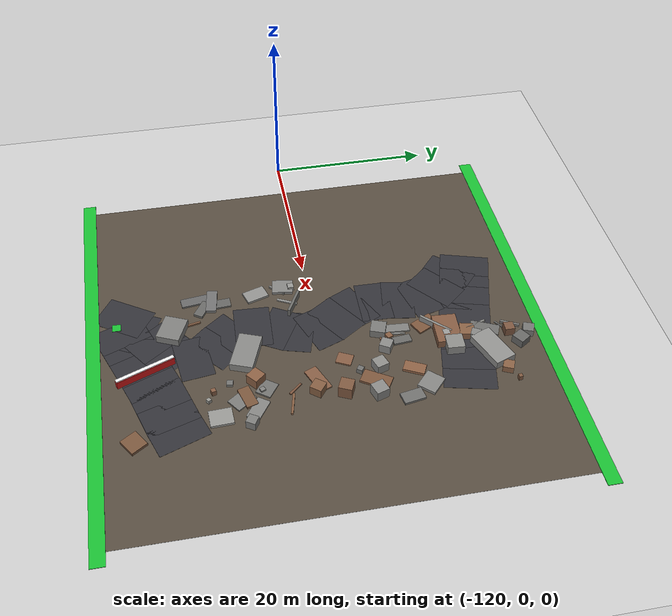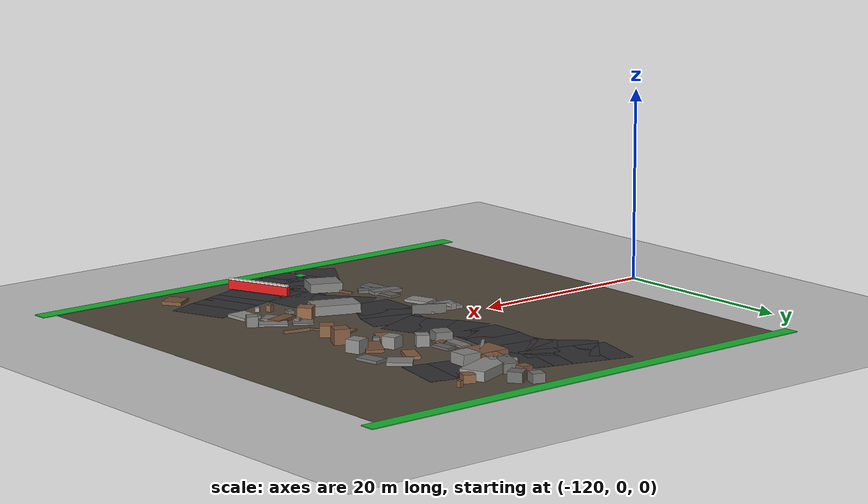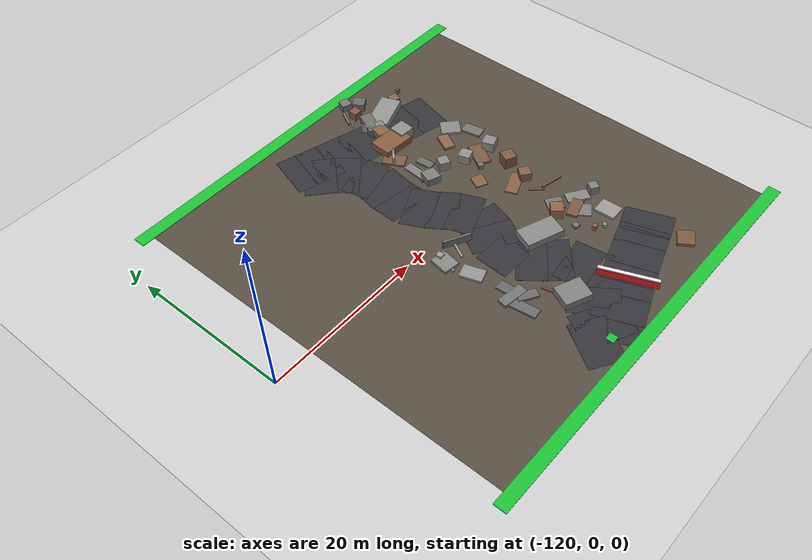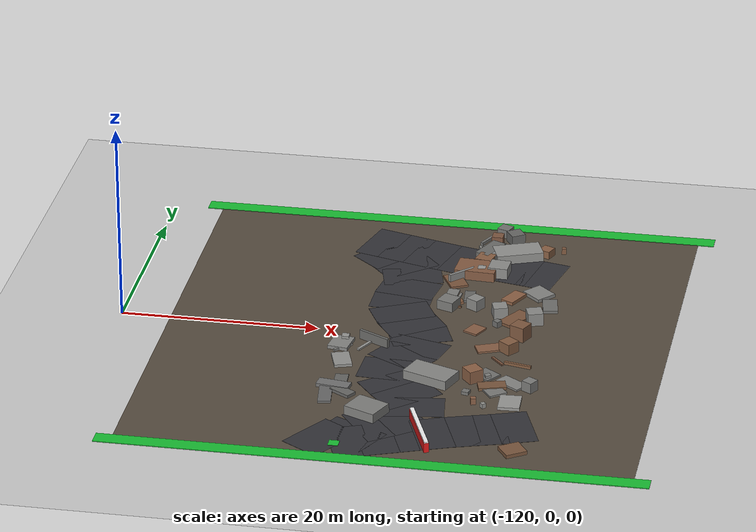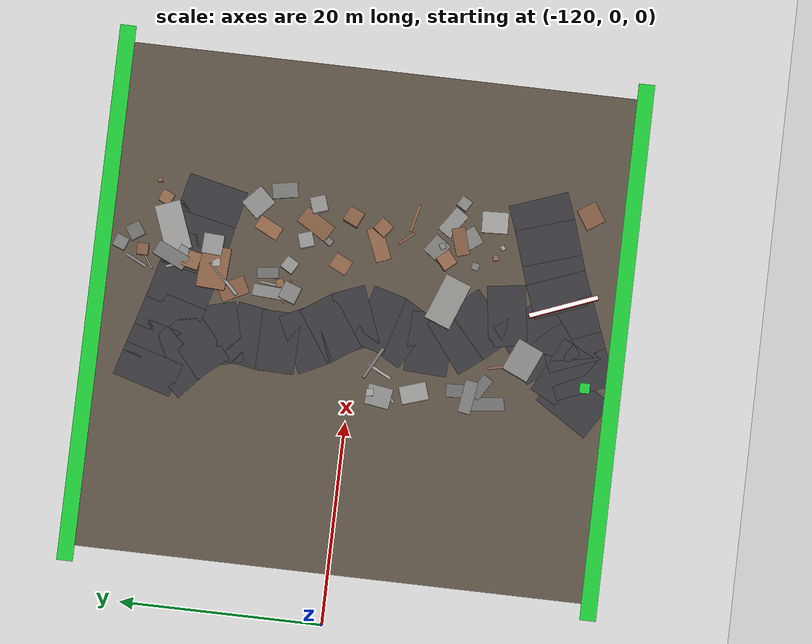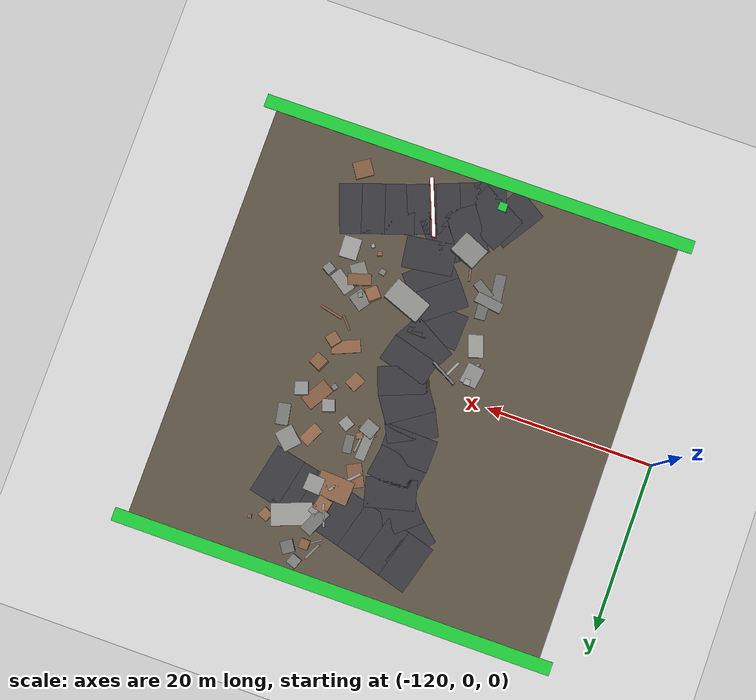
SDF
<sdf version="1.6">
 <world name="navitas_arena">
  <model name="ground_plane">
   <static>true</static>
   <link name="link">
    <collision name="collision">
     <geometry><plane><normal>0 0 1</normal><size>400 400</size></plane></geometry>
     <surface><friction><ode><mu>0.8</mu><mu2>0.8</mu2></ode></friction></surface>
    </collision>
    <visual name="visual">
     <cast_shadows>false</cast_shadows>
     <geometry><plane><normal>0 0 1</normal><size>400 400</size></plane></geometry>
     <material>
      <script><uri>file://media/materials/scripts/gazebo.material</uri><name>Gazebo/Grey</name></script>
     </material>
    </visual>
   </link>
  </model>
  <model name="gd_kolay">
   <static>true</static>
   <pose>-90.000 0.000 0.010 0 0 0.000</pose>
   <link name="link">
    <collision name="col"><geometry><box><size>50.000 50.000 0.020</size></box></geometry></collision>
    <visual name="vis">
     <geometry><box><size>50.000 50.000 0.020</size></box></geometry>
     <material><ambient>0.34 0.30 0.25 1</ambient><diffuse>0.34 0.30 0.25 1</diffuse></material>
    </visual>
   </link>
  </model>
  <model name="brd_kolay_N">
   <static>true</static>
   <pose>-90.000 25.800 0.040 0 0 0.000</pose>
   <link name="link">
    <collision name="col"><geometry><box><size>53.200 1.600 0.080</size></box></geometry></collision>
    <visual name="vis">
     <geometry><box><size>53.200 1.600 0.080</size></box></geometry>
     <material><ambient>0.10 0.75 0.20 1</ambient><diffuse>0.10 0.75 0.20 1</diffuse></material>
    </visual>
   </link>
  </model>
  <model name="brd_kolay_S">
   <static>true</static>
   <pose>-90.000 -25.800 0.040 0 0 0.000</pose>
   <link name="link">
    <collision name="col"><geometry><box><size>53.200 1.600 0.080</size></box></geometry></collision>
    <visual name="vis">
     <geometry><box><size>53.200 1.600 0.080</size></box></geometry>
     <material><ambient>0.10 0.75 0.20 1</ambient><diffuse>0.10 0.75 0.20 1</diffuse></material>
    </visual>
   </link>
  </model>
  <model name="road_kolay_1_0">
   <static>true</static>
   <pose>-95.431 -22.070 0.040 0 0 2.572</pose>
   <link name="link">
    <collision name="col"><geometry><box><size>4.349 6.000 0.020</size></box></geometry></collision>
    <visual name="vis">
     <geometry><box><size>4.349 6.000 0.020</size></box></geometry>
     <material><ambient>0.20 0.20 0.22 1</ambient><diffuse>0.20 0.20 0.22 1</diffuse></material>
    </visual>
   </link>
  </model>
  <model name="road_kolay_2_0">
   <static>true</static>
   <pose>-93.084 -21.250 0.040 0 0 1.098</pose>
   <link name="link">
    <collision name="col"><geometry><box><size>4.831 6.000 0.020</size></box></geometry></collision>
    <visual name="vis">
     <geometry><box><size>4.831 6.000 0.020</size></box></geometry>
     <material><ambient>0.20 0.20 0.22 1</ambient><diffuse>0.20 0.20 0.22 1</diffuse></material>
    </visual>
   </link>
  </model>
  <model name="road_kolay_2_1">
   <static>true</static>
   <pose>-91.062 -18.696 0.040 0 0 0.620</pose>
   <link name="link">
    <collision name="col"><geometry><box><size>3.667 6.000 0.020</size></box></geometry></collision>
    <visual name="vis">
     <geometry><box><size>3.667 6.000 0.020</size></box></geometry>
     <material><ambient>0.20 0.20 0.22 1</ambient><diffuse>0.20 0.20 0.22 1</diffuse></material>
    </visual>
   </link>
  </model>
  <model name="road_kolay_2_2">
   <static>true</static>
   <pose>-88.757 -16.984 0.040 0 0 0.656</pose>
   <link name="link">
    <collision name="col"><geometry><box><size>3.876 6.000 0.020</size></box></geometry></collision>
    <visual name="vis">
     <geometry><box><size>3.876 6.000 0.020</size></box></geometry>
     <material><ambient>0.20 0.20 0.22 1</ambient><diffuse>0.20 0.20 0.22 1</diffuse></material>
    </visual>
   </link>
  </model>
  <model name="road_kolay_2_3">
   <static>true</static>
   <pose>-87.777 -14.629 0.040 0 0 1.707</pose>
   <link name="link">
    <collision name="col"><geometry><box><size>3.821 6.000 0.020</size></box></geometry></collision>
    <visual name="vis">
     <geometry><box><size>3.821 6.000 0.020</size></box></geometry>
     <material><ambient>0.20 0.20 0.22 1</ambient><diffuse>0.20 0.20 0.22 1</diffuse></material>
    </visual>
   </link>
  </model>
  <model name="road_kolay_2_4">
   <static>true</static>
   <pose>-88.890 -12.157 0.040 0 0 2.299</pose>
   <link name="link">
    <collision name="col"><geometry><box><size>3.648 6.000 0.020</size></box></geometry></collision>
    <visual name="vis">
     <geometry><box><size>3.648 6.000 0.020</size></box></geometry>
     <material><ambient>0.20 0.20 0.22 1</ambient><diffuse>0.20 0.20 0.22 1</diffuse></material>
    </visual>
   </link>
  </model>
  <model name="road_kolay_2_5">
   <static>true</static>
   <pose>-90.622 -10.077 0.040 0 0 2.230</pose>
   <link name="link">
    <collision name="col"><geometry><box><size>3.569 6.000 0.020</size></box></geometry></collision>
    <visual name="vis">
     <geometry><box><size>3.569 6.000 0.020</size></box></geometry>
     <material><ambient>0.20 0.20 0.22 1</ambient><diffuse>0.20 0.20 0.22 1</diffuse></material>
    </visual>
   </link>
  </model>
  <model name="road_kolay_2_6">
   <static>true</static>
   <pose>-91.360 -7.344 0.040 0 0 1.524</pose>
   <link name="link">
    <collision name="col"><geometry><box><size>4.259 6.000 0.020</size></box></geometry></collision>
    <visual name="vis">
     <geometry><box><size>4.259 6.000 0.020</size></box></geometry>
     <material><ambient>0.20 0.20 0.22 1</ambient><diffuse>0.20 0.20 0.22 1</diffuse></material>
    </visual>
   </link>
  </model>
  <model name="road_kolay_2_7">
   <static>true</static>
   <pose>-90.614 -4.500 0.040 0 0 1.052</pose>
   <link name="link">
    <collision name="col"><geometry><box><size>3.588 6.000 0.020</size></box></geometry></collision>
    <visual name="vis">
     <geometry><box><size>3.588 6.000 0.020</size></box></geometry>
     <material><ambient>0.20 0.20 0.22 1</ambient><diffuse>0.20 0.20 0.22 1</diffuse></material>
    </visual>
   </link>
  </model>
  <model name="road_kolay_2_8">
   <static>true</static>
   <pose>-89.621 -2.167 0.040 0 0 1.299</pose>
   <link name="link">
    <collision name="col"><geometry><box><size>3.323 6.000 0.020</size></box></geometry></collision>
    <visual name="vis">
     <geometry><box><size>3.323 6.000 0.020</size></box></geometry>
     <material><ambient>0.20 0.20 0.22 1</ambient><diffuse>0.20 0.20 0.22 1</diffuse></material>
    </visual>
   </link>
  </model>
  <model name="road_kolay_2_9">
   <static>true</static>
   <pose>-89.746 0.167 0.040 0 0 1.939</pose>
   <link name="link">
    <collision name="col"><geometry><box><size>3.401 6.000 0.020</size></box></geometry></collision>
    <visual name="vis">
     <geometry><box><size>3.401 6.000 0.020</size></box></geometry>
     <material><ambient>0.20 0.20 0.22 1</ambient><diffuse>0.20 0.20 0.22 1</diffuse></material>
    </visual>
   </link>
  </model>
  <model name="road_kolay_2_10">
   <static>true</static>
   <pose>-90.989 2.500 0.040 0 0 2.167</pose>
   <link name="link">
    <collision name="col"><geometry><box><size>3.720 6.000 0.020</size></box></geometry></collision>
    <visual name="vis">
     <geometry><box><size>3.720 6.000 0.020</size></box></geometry>
     <material><ambient>0.20 0.20 0.22 1</ambient><diffuse>0.20 0.20 0.22 1</diffuse></material>
    </visual>
   </link>
  </model>
  <model name="road_kolay_2_11">
   <static>true</static>
   <pose>-92.349 4.833 0.040 0 0 2.024</pose>
   <link name="link">
    <collision name="col"><geometry><box><size>3.495 6.000 0.020</size></box></geometry></collision>
    <visual name="vis">
     <geometry><box><size>3.495 6.000 0.020</size></box></geometry>
     <material><ambient>0.20 0.20 0.22 1</ambient><diffuse>0.20 0.20 0.22 1</diffuse></material>
    </visual>
   </link>
  </model>
  <model name="road_kolay_2_12">
   <static>true</static>
   <pose>-92.888 7.460 0.040 0 0 1.551</pose>
   <link name="link">
    <collision name="col"><geometry><box><size>3.821 6.000 0.020</size></box></geometry></collision>
    <visual name="vis">
     <geometry><box><size>3.821 6.000 0.020</size></box></geometry>
     <material><ambient>0.20 0.20 0.22 1</ambient><diffuse>0.20 0.20 0.22 1</diffuse></material>
    </visual>
   </link>
  </model>
  <model name="road_kolay_2_13">
   <static>true</static>
   <pose>-92.635 10.340 0.040 0 0 1.414</pose>
   <link name="link">
    <collision name="col"><geometry><box><size>3.775 6.000 0.020</size></box></geometry></collision>
    <visual name="vis">
     <geometry><box><size>3.775 6.000 0.020</size></box></geometry>
     <material><ambient>0.20 0.20 0.22 1</ambient><diffuse>0.20 0.20 0.22 1</diffuse></material>
    </visual>
   </link>
  </model>
  <model name="road_kolay_2_14">
   <static>true</static>
   <pose>-92.737 13.042 0.040 0 0 1.820</pose>
   <link name="link">
    <collision name="col"><geometry><box><size>3.546 6.000 0.020</size></box></geometry></collision>
    <visual name="vis">
     <geometry><box><size>3.546 6.000 0.020</size></box></geometry>
     <material><ambient>0.20 0.20 0.22 1</ambient><diffuse>0.20 0.20 0.22 1</diffuse></material>
    </visual>
   </link>
  </model>
  <model name="road_kolay_2_15">
   <static>true</static>
   <pose>-93.978 15.414 0.040 0 0 2.269</pose>
   <link name="link">
    <collision name="col"><geometry><box><size>3.744 6.000 0.020</size></box></geometry></collision>
    <visual name="vis">
     <geometry><box><size>3.744 6.000 0.020</size></box></geometry>
     <material><ambient>0.20 0.20 0.22 1</ambient><diffuse>0.20 0.20 0.22 1</diffuse></material>
    </visual>
   </link>
  </model>
  <model name="road_kolay_2_16">
   <static>true</static>
   <pose>-96.030 17.516 0.040 0 0 2.415</pose>
   <link name="link">
    <collision name="col"><geometry><box><size>3.945 6.000 0.020</size></box></geometry></collision>
    <visual name="vis">
     <geometry><box><size>3.945 6.000 0.020</size></box></geometry>
     <material><ambient>0.20 0.20 0.22 1</ambient><diffuse>0.20 0.20 0.22 1</diffuse></material>
    </visual>
   </link>
  </model>
  <model name="road_kolay_3_0">
   <static>true</static>
   <pose>-92.677 -22.494 0.040 0 0 0.371</pose>
   <link name="link">
    <collision name="col"><geometry><box><size>3.694 6.000 0.020</size></box></geometry></collision>
    <visual name="vis">
     <geometry><box><size>3.694 6.000 0.020</size></box></geometry>
     <material><ambient>0.20 0.20 0.22 1</ambient><diffuse>0.20 0.20 0.22 1</diffuse></material>
    </visual>
   </link>
  </model>
  <model name="road_kolay_3_1">
   <static>true</static>
   <pose>-90.156 -21.514 0.040 0 0 0.371</pose>
   <link name="link">
    <collision name="col"><geometry><box><size>3.516 6.000 0.020</size></box></geometry></collision>
    <visual name="vis">
     <geometry><box><size>3.516 6.000 0.020</size></box></geometry>
     <material><ambient>0.20 0.20 0.22 1</ambient><diffuse>0.20 0.20 0.22 1</diffuse></material>
    </visual>
   </link>
  </model>
  <model name="road_kolay_3_2">
   <static>true</static>
   <pose>-87.615 -20.524 0.040 0 0 0.372</pose>
   <link name="link">
    <collision name="col"><geometry><box><size>3.738 6.000 0.020</size></box></geometry></collision>
    <visual name="vis">
     <geometry><box><size>3.738 6.000 0.020</size></box></geometry>
     <material><ambient>0.20 0.20 0.22 1</ambient><diffuse>0.20 0.20 0.22 1</diffuse></material>
    </visual>
   </link>
  </model>
  <model name="road_kolay_3_3">
   <static>true</static>
   <pose>-85.096 -19.556 0.040 0 0 0.363</pose>
   <link name="link">
    <collision name="col"><geometry><box><size>3.459 6.000 0.020</size></box></geometry></collision>
    <visual name="vis">
     <geometry><box><size>3.459 6.000 0.020</size></box></geometry>
     <material><ambient>0.20 0.20 0.22 1</ambient><diffuse>0.20 0.20 0.22 1</diffuse></material>
    </visual>
   </link>
  </model>
  <model name="road_kolay_3_4">
   <static>true</static>
   <pose>-82.669 -18.702 0.040 0 0 0.314</pose>
   <link name="link">
    <collision name="col"><geometry><box><size>3.488 6.000 0.020</size></box></geometry></collision>
    <visual name="vis">
     <geometry><box><size>3.488 6.000 0.020</size></box></geometry>
     <material><ambient>0.20 0.20 0.22 1</ambient><diffuse>0.20 0.20 0.22 1</diffuse></material>
    </visual>
   </link>
  </model>
  <model name="road_kolay_3_5">
   <static>true</static>
   <pose>-80.135 -17.886 0.040 0 0 0.309</pose>
   <link name="link">
    <collision name="col"><geometry><box><size>3.637 6.000 0.020</size></box></geometry></collision>
    <visual name="vis">
     <geometry><box><size>3.637 6.000 0.020</size></box></geometry>
     <material><ambient>0.20 0.20 0.22 1</ambient><diffuse>0.20 0.20 0.22 1</diffuse></material>
    </visual>
   </link>
  </model>
  <model name="road_kolay_3_6">
   <static>true</static>
   <pose>-77.595 -17.017 0.040 0 0 0.350</pose>
   <link name="link">
    <collision name="col"><geometry><box><size>3.533 6.000 0.020</size></box></geometry></collision>
    <visual name="vis">
     <geometry><box><size>3.533 6.000 0.020</size></box></geometry>
     <material><ambient>0.20 0.20 0.22 1</ambient><diffuse>0.20 0.20 0.22 1</diffuse></material>
    </visual>
   </link>
  </model>
  <model name="road_kolay_3_21">
   <static>true</static>
   <pose>-79.750 15.464 0.040 0 0 2.918</pose>
   <link name="link">
    <collision name="col"><geometry><box><size>3.685 6.000 0.020</size></box></geometry></collision>
    <visual name="vis">
     <geometry><box><size>3.685 6.000 0.020</size></box></geometry>
     <material><ambient>0.20 0.20 0.22 1</ambient><diffuse>0.20 0.20 0.22 1</diffuse></material>
    </visual>
   </link>
  </model>
  <model name="road_kolay_3_22">
   <static>true</static>
   <pose>-82.488 16.066 0.040 0 0 2.932</pose>
   <link name="link">
    <collision name="col"><geometry><box><size>3.722 6.000 0.020</size></box></geometry></collision>
    <visual name="vis">
     <geometry><box><size>3.722 6.000 0.020</size></box></geometry>
     <material><ambient>0.20 0.20 0.22 1</ambient><diffuse>0.20 0.20 0.22 1</diffuse></material>
    </visual>
   </link>
  </model>
  <model name="road_kolay_3_23">
   <static>true</static>
   <pose>-85.172 16.646 0.040 0 0 2.926</pose>
   <link name="link">
    <collision name="col"><geometry><box><size>3.570 6.000 0.020</size></box></geometry></collision>
    <visual name="vis">
     <geometry><box><size>3.570 6.000 0.020</size></box></geometry>
     <material><ambient>0.20 0.20 0.22 1</ambient><diffuse>0.20 0.20 0.22 1</diffuse></material>
    </visual>
   </link>
  </model>
  <model name="road_kolay_3_24">
   <static>true</static>
   <pose>-88.324 17.419 0.040 0 0 2.884</pose>
   <link name="link">
    <collision name="col"><geometry><box><size>4.721 6.000 0.020</size></box></geometry></collision>
    <visual name="vis">
     <geometry><box><size>4.721 6.000 0.020</size></box></geometry>
     <material><ambient>0.20 0.20 0.22 1</ambient><diffuse>0.20 0.20 0.22 1</diffuse></material>
    </visual>
   </link>
  </model>
  <model name="road_kolay_3_25">
   <static>true</static>
   <pose>-91.609 18.320 0.040 0 0 2.862</pose>
   <link name="link">
    <collision name="col"><geometry><box><size>3.894 6.000 0.020</size></box></geometry></collision>
    <visual name="vis">
     <geometry><box><size>3.894 6.000 0.020</size></box></geometry>
     <material><ambient>0.20 0.20 0.22 1</ambient><diffuse>0.20 0.20 0.22 1</diffuse></material>
    </visual>
   </link>
  </model>
  <model name="road_kolay_3_26">
   <static>true</static>
   <pose>-94.418 19.133 0.040 0 0 2.858</pose>
   <link name="link">
    <collision name="col"><geometry><box><size>3.753 6.000 0.020</size></box></geometry></collision>
    <visual name="vis">
     <geometry><box><size>3.753 6.000 0.020</size></box></geometry>
     <material><ambient>0.20 0.20 0.22 1</ambient><diffuse>0.20 0.20 0.22 1</diffuse></material>
    </visual>
   </link>
  </model>
  <model name="road_kolay_3_27">
   <static>true</static>
   <pose>-96.994 19.885 0.040 0 0 2.856</pose>
   <link name="link">
    <collision name="col"><geometry><box><size>3.415 6.000 0.020</size></box></geometry></collision>
    <visual name="vis">
     <geometry><box><size>3.415 6.000 0.020</size></box></geometry>
     <material><ambient>0.20 0.20 0.22 1</ambient><diffuse>0.20 0.20 0.22 1</diffuse></material>
    </visual>
   </link>
  </model>
  <model name="bar_kolay_3">
   <static>true</static>
   <pose>-86.292 -20.009 0.500 0 0 1.943</pose>
   <link name="link">
    <collision name="col"><geometry><box><size>7.000 0.500 1.000</size></box></geometry></collision>
    <visual name="vis">
     <geometry><box><size>7.000 0.500 1.000</size></box></geometry>
     <material><ambient>0.85 0.10 0.10 1</ambient><diffuse>0.85 0.10 0.10 1</diffuse></material>
    </visual>
   </link>
  </model>
  <model name="bar_kolay_3b">
   <static>true</static>
   <pose>-86.292 -20.009 1.000 0 0 1.943</pose>
   <link name="link">
    <collision name="col"><geometry><box><size>7.000 0.400 0.300</size></box></geometry></collision>
    <visual name="vis">
     <geometry><box><size>7.000 0.400 0.300</size></box></geometry>
     <material><ambient>0.95 0.95 0.95 1</ambient><diffuse>0.95 0.95 0.95 1</diffuse></material>
    </visual>
   </link>
  </model>
  <model name="blk_kolay_3_1_0">
   <static>true</static>
   <pose>-84.111 14.920 0.588 0 0 3.082</pose>
   <link name="link">
    <collision name="col"><geometry><box><size>2.005 2.005 1.176</size></box></geometry></collision>
    <visual name="vis">
     <geometry><box><size>2.005 2.005 1.176</size></box></geometry>
     <material><ambient>0.55 0.55 0.54 1</ambient><diffuse>0.55 0.55 0.54 1</diffuse></material>
    </visual>
   </link>
  </model>
  <model name="blk_kolay_3_1_1">
   <static>true</static>
   <pose>-85.645 18.882 0.500 0 0 1.147</pose>
   <link name="link">
    <collision name="col"><geometry><box><size>3.354 1.493 1.000</size></box></geometry></collision>
    <visual name="vis">
     <geometry><box><size>3.354 1.493 1.000</size></box></geometry>
     <material><ambient>0.43 0.43 0.42 1</ambient><diffuse>0.43 0.43 0.42 1</diffuse></material>
    </visual>
   </link>
  </model>
  <model name="blk_kolay_3_1_2">
   <static>true</static>
   <pose>-85.834 16.841 0.500 0 0 1.347</pose>
   <link name="link">
    <collision name="col"><geometry><box><size>1.681 1.681 1.000</size></box></geometry></collision>
    <visual name="vis">
     <geometry><box><size>1.681 1.681 1.000</size></box></geometry>
     <material><ambient>0.54 0.38 0.27 1</ambient><diffuse>0.54 0.38 0.27 1</diffuse></material>
    </visual>
   </link>
  </model>
  <model name="blk_kolay_3_1_3">
   <static>true</static>
   <pose>-87.325 13.539 0.500 0 0 0.792</pose>
   <link name="link">
    <collision name="col"><geometry><box><size>4.159 0.312 1.000</size></box></geometry></collision>
    <visual name="vis">
     <geometry><box><size>4.159 0.312 1.000</size></box></geometry>
     <material><ambient>0.55 0.55 0.54 1</ambient><diffuse>0.55 0.55 0.54 1</diffuse></material>
    </visual>
   </link>
  </model>
  <model name="blk_kolay_3_1_4">
   <static>true</static>
   <pose>-86.329 17.955 0.500 0 0 1.920</pose>
   <link name="link">
    <collision name="col"><geometry><box><size>2.733 0.218 1.000</size></box></geometry></collision>
    <visual name="vis">
     <geometry><box><size>2.733 0.218 1.000</size></box></geometry>
     <material><ambient>0.57 0.57 0.55 1</ambient><diffuse>0.57 0.57 0.55 1</diffuse></material>
    </visual>
   </link>
  </model>
  <model name="blk_kolay_3_1_5">
   <static>true</static>
   <pose>-85.167 17.742 0.500 0 0 1.089</pose>
   <link name="link">
    <collision name="col"><geometry><box><size>1.077 1.077 1.000</size></box></geometry></collision>
    <visual name="vis">
     <geometry><box><size>1.077 1.077 1.000</size></box></geometry>
     <material><ambient>0.52 0.52 0.51 1</ambient><diffuse>0.52 0.52 0.51 1</diffuse></material>
    </visual>
   </link>
  </model>
  <model name="blk_kolay_3_1_6">
   <static>true</static>
   <pose>-86.369 14.597 0.500 0 0 3.085</pose>
   <link name="link">
    <collision name="col"><geometry><box><size>4.143 2.849 1.000</size></box></geometry></collision>
    <visual name="vis">
     <geometry><box><size>4.143 2.849 1.000</size></box></geometry>
     <material><ambient>0.52 0.36 0.26 1</ambient><diffuse>0.52 0.36 0.26 1</diffuse></material>
    </visual>
   </link>
  </model>
  <model name="blk_kolay_3_1_7">
   <static>true</static>
   <pose>-85.835 14.394 0.500 0 0 1.606</pose>
   <link name="link">
    <collision name="col"><geometry><box><size>0.790 0.790 1.000</size></box></geometry></collision>
    <visual name="vis">
     <geometry><box><size>0.790 0.790 1.000</size></box></geometry>
     <material><ambient>0.60 0.60 0.59 1</ambient><diffuse>0.60 0.60 0.59 1</diffuse></material>
    </visual>
   </link>
  </model>
  <model name="blk_kolay_3_1_8">
   <static>true</static>
   <pose>-82.851 19.014 0.500 0 0 0.366</pose>
   <link name="link">
    <collision name="col"><geometry><box><size>4.837 2.591 1.000</size></box></geometry></collision>
    <visual name="vis">
     <geometry><box><size>4.837 2.591 1.000</size></box></geometry>
     <material><ambient>0.57 0.57 0.56 1</ambient><diffuse>0.57 0.57 0.56 1</diffuse></material>
    </visual>
   </link>
  </model>
  <model name="deb_kolay_2">
   <static>true</static>
   <pose>-81.689 -7.548 0.227 0 0 1.991</pose>
   <link name="link">
    <collision name="col"><geometry><box><size>0.559 0.559 0.454</size></box></geometry></collision>
    <visual name="vis">
     <geometry><box><size>0.559 0.559 0.454</size></box></geometry>
     <material><ambient>0.50 0.50 0.49 1</ambient><diffuse>0.50 0.50 0.49 1</diffuse></material>
    </visual>
   </link>
  </model>
  <model name="deb_kolay_3">
   <static>true</static>
   <pose>-83.629 22.665 0.527 0 0 0.575</pose>
   <link name="link">
    <collision name="col"><geometry><box><size>1.472 1.472 1.055</size></box></geometry></collision>
    <visual name="vis">
     <geometry><box><size>1.472 1.472 1.055</size></box></geometry>
     <material><ambient>0.41 0.41 0.40 1</ambient><diffuse>0.41 0.41 0.40 1</diffuse></material>
    </visual>
   </link>
  </model>
  <model name="deb_kolay_4">
   <static>true</static>
   <pose>-82.634 5.870 0.599 0 0 1.893</pose>
   <link name="link">
    <collision name="col"><geometry><box><size>1.448 1.448 1.198</size></box></geometry></collision>
    <visual name="vis">
     <geometry><box><size>1.448 1.448 1.198</size></box></geometry>
     <material><ambient>0.55 0.55 0.54 1</ambient><diffuse>0.55 0.55 0.54 1</diffuse></material>
    </visual>
   </link>
  </model>
  <model name="deb_kolay_10">
   <static>true</static>
   <pose>-77.042 -21.751 0.193 0 0 0.582</pose>
   <link name="link">
    <collision name="col"><geometry><box><size>2.179 2.021 0.386</size></box></geometry></collision>
    <visual name="vis">
     <geometry><box><size>2.179 2.021 0.386</size></box></geometry>
     <material><ambient>0.48 0.34 0.24 1</ambient><diffuse>0.48 0.34 0.24 1</diffuse></material>
    </visual>
   </link>
  </model>
  <model name="deb_kolay_11">
   <static>true</static>
   <pose>-88.210 12.486 0.126 0 0 2.036</pose>
   <link name="link">
    <collision name="col"><geometry><box><size>2.806 1.802 0.253</size></box></geometry></collision>
    <visual name="vis">
     <geometry><box><size>2.806 1.802 0.253</size></box></geometry>
     <material><ambient>0.49 0.34 0.24 1</ambient><diffuse>0.49 0.34 0.24 1</diffuse></material>
    </visual>
   </link>
  </model>
  <model name="deb_kolay_12">
   <static>true</static>
   <pose>-80.828 -9.916 0.105 0 0 2.197</pose>
   <link name="link">
    <collision name="col"><geometry><box><size>2.580 1.867 0.210</size></box></geometry></collision>
    <visual name="vis">
     <geometry><box><size>2.580 1.867 0.210</size></box></geometry>
     <material><ambient>0.48 0.48 0.47 1</ambient><diffuse>0.48 0.48 0.47 1</diffuse></material>
    </visual>
   </link>
  </model>
  <model name="deb_kolay_15">
   <static>true</static>
   <pose>-85.340 21.747 0.544 0 0 3.126</pose>
   <link name="link">
    <collision name="col"><geometry><box><size>1.136 1.136 1.087</size></box></geometry></collision>
    <visual name="vis">
     <geometry><box><size>1.136 1.136 1.087</size></box></geometry>
     <material><ambient>0.49 0.34 0.25 1</ambient><diffuse>0.49 0.34 0.25 1</diffuse></material>
    </visual>
   </link>
  </model>
  <model name="deb_kolay_16">
   <static>true</static>
   <pose>-81.010 -9.258 0.156 0 0 0.289</pose>
   <link name="link">
    <collision name="col"><geometry><box><size>2.753 1.350 0.313</size></box></geometry></collision>
    <visual name="vis">
     <geometry><box><size>2.753 1.350 0.313</size></box></geometry>
     <material><ambient>0.48 0.34 0.24 1</ambient><diffuse>0.48 0.34 0.24 1</diffuse></material>
    </visual>
   </link>
  </model>
  <model name="deb_kolay_22">
   <static>true</static>
   <pose>-79.001 5.004 0.664 0 0 0.324</pose>
   <link name="link">
    <collision name="col"><geometry><box><size>1.556 1.556 1.329</size></box></geometry></collision>
    <visual name="vis">
     <geometry><box><size>1.556 1.556 1.329</size></box></geometry>
     <material><ambient>0.54 0.54 0.53 1</ambient><diffuse>0.54 0.54 0.53 1</diffuse></material>
    </visual>
   </link>
  </model>
  <model name="deb_kolay_23">
   <static>true</static>
   <pose>-81.808 9.662 0.182 0 0 1.105</pose>
   <link name="link">
    <collision name="col"><geometry><box><size>2.478 1.387 0.365</size></box></geometry></collision>
    <visual name="vis">
     <geometry><box><size>2.478 1.387 0.365</size></box></geometry>
     <material><ambient>0.55 0.38 0.27 1</ambient><diffuse>0.55 0.38 0.27 1</diffuse></material>
    </visual>
   </link>
  </model>
  <model name="deb_kolay_24">
   <static>true</static>
   <pose>-97.087 -2.957 0.190 0 0 1.427</pose>
   <link name="link">
    <collision name="col"><geometry><box><size>2.453 2.041 0.380</size></box></geometry></collision>
    <visual name="vis">
     <geometry><box><size>2.453 2.041 0.380</size></box></geometry>
     <material><ambient>0.52 0.52 0.51 1</ambient><diffuse>0.52 0.52 0.51 1</diffuse></material>
    </visual>
   </link>
  </model>
  <model name="deb_kolay_25">
   <static>true</static>
   <pose>-77.950 8.496 0.157 0 0 1.750</pose>
   <link name="link">
    <collision name="col"><geometry><box><size>2.537 1.495 0.315</size></box></geometry></collision>
    <visual name="vis">
     <geometry><box><size>2.537 1.495 0.315</size></box></geometry>
     <material><ambient>0.44 0.44 0.43 1</ambient><diffuse>0.44 0.44 0.43 1</diffuse></material>
    </visual>
   </link>
  </model>
  <model name="deb_kolay_28">
   <static>true</static>
   <pose>-83.084 -8.078 0.663 0 0 2.274</pose>
   <link name="link">
    <collision name="col"><geometry><box><size>1.511 1.511 1.326</size></box></geometry></collision>
    <visual name="vis">
     <geometry><box><size>1.511 1.511 1.326</size></box></geometry>
     <material><ambient>0.55 0.38 0.27 1</ambient><diffuse>0.55 0.38 0.27 1</diffuse></material>
    </visual>
   </link>
  </model>
  <model name="deb_kolay_30">
   <static>true</static>
   <pose>-81.289 -3.934 0.089 0 0 2.289</pose>
   <link name="link">
    <collision name="col"><geometry><box><size>1.867 0.254 0.177</size></box></geometry></collision>
    <visual name="vis">
     <geometry><box><size>1.867 0.254 0.177</size></box></geometry>
     <material><ambient>0.48 0.33 0.24 1</ambient><diffuse>0.48 0.33 0.24 1</diffuse></material>
    </visual>
   </link>
  </model>
  <model name="deb_kolay_31">
   <static>true</static>
   <pose>-87.858 7.166 0.101 0 0 2.912</pose>
   <link name="link">
    <collision name="col"><geometry><box><size>2.367 0.204 0.201</size></box></geometry></collision>
    <visual name="vis">
     <geometry><box><size>2.367 0.204 0.201</size></box></geometry>
     <material><ambient>0.47 0.33 0.23 1</ambient><diffuse>0.47 0.33 0.23 1</diffuse></material>
    </visual>
   </link>
  </model>
  <model name="deb_kolay_32">
   <static>true</static>
   <pose>-92.896 -14.359 0.116 0 0 1.797</pose>
   <link name="link">
    <collision name="col"><geometry><box><size>2.151 0.247 0.233</size></box></geometry></collision>
    <visual name="vis">
     <geometry><box><size>2.151 0.247 0.233</size></box></geometry>
     <material><ambient>0.50 0.35 0.25 1</ambient><diffuse>0.50 0.35 0.25 1</diffuse></material>
    </visual>
   </link>
  </model>
  <model name="deb_kolay_34">
   <static>true</static>
   <pose>-84.545 2.213 0.106 0 0 1.111</pose>
   <link name="link">
    <collision name="col"><geometry><box><size>1.810 1.540 0.211</size></box></geometry></collision>
    <visual name="vis">
     <geometry><box><size>1.810 1.540 0.211</size></box></geometry>
     <material><ambient>0.53 0.37 0.27 1</ambient><diffuse>0.53 0.37 0.27 1</diffuse></material>
    </visual>
   </link>
  </model>
  <model name="deb_kolay_35">
   <static>true</static>
   <pose>-81.891 -7.015 0.108 0 0 0.945</pose>
   <link name="link">
    <collision name="col"><geometry><box><size>1.804 2.059 0.215</size></box></geometry></collision>
    <visual name="vis">
     <geometry><box><size>1.804 2.059 0.215</size></box></geometry>
     <material><ambient>0.45 0.45 0.44 1</ambient><diffuse>0.45 0.45 0.44 1</diffuse></material>
    </visual>
   </link>
  </model>
  <model name="deb_kolay_42">
   <static>true</static>
   <pose>-87.100 7.949 0.155 0 0 0.418</pose>
   <link name="link">
    <collision name="col"><geometry><box><size>0.752 0.752 0.311</size></box></geometry></collision>
    <visual name="vis">
     <geometry><box><size>0.752 0.752 0.311</size></box></geometry>
     <material><ambient>0.53 0.37 0.26 1</ambient><diffuse>0.53 0.37 0.26 1</diffuse></material>
    </visual>
   </link>
  </model>
  <model name="deb_kolay_50">
   <static>true</static>
   <pose>-79.219 -4.559 0.164 0 0 2.913</pose>
   <link name="link">
    <collision name="col"><geometry><box><size>2.780 0.266 0.329</size></box></geometry></collision>
    <visual name="vis">
     <geometry><box><size>2.780 0.266 0.329</size></box></geometry>
     <material><ambient>0.51 0.36 0.25 1</ambient><diffuse>0.51 0.36 0.25 1</diffuse></material>
    </visual>
   </link>
  </model>
  <model name="deb_kolay_54">
   <static>true</static>
   <pose>-79.226 -8.344 0.110 0 0 2.537</pose>
   <link name="link">
    <collision name="col"><geometry><box><size>2.840 1.519 0.221</size></box></geometry></collision>
    <visual name="vis">
     <geometry><box><size>2.840 1.519 0.221</size></box></geometry>
     <material><ambient>0.52 0.52 0.51 1</ambient><diffuse>0.52 0.52 0.51 1</diffuse></material>
    </visual>
   </link>
  </model>
  <model name="deb_kolay_55">
   <static>true</static>
   <pose>-82.259 -12.870 0.345 0 0 1.850</pose>
   <link name="link">
    <collision name="col"><geometry><box><size>0.526 0.526 0.691</size></box></geometry></collision>
    <visual name="vis">
     <geometry><box><size>0.526 0.526 0.691</size></box></geometry>
     <material><ambient>0.53 0.37 0.27 1</ambient><diffuse>0.53 0.37 0.27 1</diffuse></material>
    </visual>
   </link>
  </model>
  <model name="deb_kolay_64">
   <static>true</static>
   <pose>-94.648 -2.789 0.099 0 0 1.105</pose>
   <link name="link">
    <collision name="col"><geometry><box><size>2.480 0.286 0.198</size></box></geometry></collision>
    <visual name="vis">
     <geometry><box><size>2.480 0.286 0.198</size></box></geometry>
     <material><ambient>0.59 0.59 0.58 1</ambient><diffuse>0.59 0.59 0.58 1</diffuse></material>
    </visual>
   </link>
  </model>
  <model name="deb_kolay_65">
   <static>true</static>
   <pose>-81.192 -13.489 0.251 0 0 0.712</pose>
   <link name="link">
    <collision name="col"><geometry><box><size>0.430 0.430 0.503</size></box></geometry></collision>
    <visual name="vis">
     <geometry><box><size>0.430 0.430 0.503</size></box></geometry>
     <material><ambient>0.59 0.59 0.57 1</ambient><diffuse>0.59 0.59 0.57 1</diffuse></material>
    </visual>
   </link>
  </model>
  <model name="deb_kolay_66">
   <static>true</static>
   <pose>-80.000 20.005 0.417 0 0 1.153</pose>
   <link name="link">
    <collision name="col"><geometry><box><size>1.217 1.217 0.835</size></box></geometry></collision>
    <visual name="vis">
     <geometry><box><size>1.217 1.217 0.835</size></box></geometry>
     <material><ambient>0.54 0.38 0.27 1</ambient><diffuse>0.54 0.38 0.27 1</diffuse></material>
    </visual>
   </link>
  </model>
  <model name="deb_kolay_67">
   <static>true</static>
   <pose>-86.021 21.395 0.079 0 0 0.603</pose>
   <link name="link">
    <collision name="col"><geometry><box><size>2.627 0.169 0.159</size></box></geometry></collision>
    <visual name="vis">
     <geometry><box><size>2.627 0.169 0.159</size></box></geometry>
     <material><ambient>0.50 0.50 0.49 1</ambient><diffuse>0.50 0.50 0.49 1</diffuse></material>
    </visual>
   </link>
  </model>
  <model name="deb_kolay_72">
   <static>true</static>
   <pose>-96.157 -11.671 0.194 0 0 2.998</pose>
   <link name="link">
    <collision name="col"><geometry><box><size>3.266 1.249 0.389</size></box></geometry></collision>
    <visual name="vis">
     <geometry><box><size>3.266 1.249 0.389</size></box></geometry>
     <material><ambient>0.45 0.45 0.45 1</ambient><diffuse>0.45 0.45 0.45 1</diffuse></material>
    </visual>
   </link>
  </model>
  <model name="deb_kolay_73">
   <static>true</static>
   <pose>-96.797 -2.030 0.328 0 0 0.036</pose>
   <link name="link">
    <collision name="col"><geometry><box><size>0.718 0.718 0.656</size></box></geometry></collision>
    <visual name="vis">
     <geometry><box><size>0.718 0.718 0.656</size></box></geometry>
     <material><ambient>0.59 0.59 0.58 1</ambient><diffuse>0.59 0.59 0.58 1</diffuse></material>
    </visual>
   </link>
  </model>
  <model name="deb_kolay_75">
   <static>true</static>
   <pose>-86.231 9.270 0.132 0 0 1.664</pose>
   <link name="link">
    <collision name="col"><geometry><box><size>2.145 1.070 0.263</size></box></geometry></collision>
    <visual name="vis">
     <geometry><box><size>2.145 1.070 0.263</size></box></geometry>
     <material><ambient>0.41 0.41 0.40 1</ambient><diffuse>0.41 0.41 0.40 1</diffuse></material>
    </visual>
   </link>
  </model>
  <model name="deb_kolay_79">
   <static>true</static>
   <pose>-87.326 8.572 0.094 0 0 1.456</pose>
   <link name="link">
    <collision name="col"><geometry><box><size>2.617 0.209 0.188</size></box></geometry></collision>
    <visual name="vis">
     <geometry><box><size>2.617 0.209 0.188</size></box></geometry>
     <material><ambient>0.55 0.55 0.54 1</ambient><diffuse>0.55 0.55 0.54 1</diffuse></material>
    </visual>
   </link>
  </model>
  <model name="deb_kolay_83">
   <static>true</static>
   <pose>-77.296 -9.223 0.547 0 0 2.596</pose>
   <link name="link">
    <collision name="col"><geometry><box><size>1.122 1.122 1.094</size></box></geometry></collision>
    <visual name="vis">
     <geometry><box><size>1.122 1.122 1.094</size></box></geometry>
     <material><ambient>0.49 0.49 0.48 1</ambient><diffuse>0.49 0.49 0.48 1</diffuse></material>
    </visual>
   </link>
  </model>
  <model name="deb_kolay_85">
   <static>true</static>
   <pose>-96.635 -13.591 0.127 0 0 1.695</pose>
   <link name="link">
    <collision name="col"><geometry><box><size>3.387 1.290 0.254</size></box></geometry></collision>
    <visual name="vis">
     <geometry><box><size>3.387 1.290 0.254</size></box></geometry>
     <material><ambient>0.41 0.41 0.41 1</ambient><diffuse>0.41 0.41 0.41 1</diffuse></material>
    </visual>
   </link>
  </model>
  <model name="deb_kolay_88">
   <static>true</static>
   <pose>-80.557 -1.553 0.592 0 0 0.907</pose>
   <link name="link">
    <collision name="col"><geometry><box><size>1.407 1.407 1.184</size></box></geometry></collision>
    <visual name="vis">
     <geometry><box><size>1.407 1.407 1.184</size></box></geometry>
     <material><ambient>0.52 0.37 0.26 1</ambient><diffuse>0.52 0.37 0.26 1</diffuse></material>
    </visual>
   </link>
  </model>
  <model name="deb_kolay_90">
   <static>true</static>
   <pose>-82.532 3.601 0.317 0 0 2.488</pose>
   <link name="link">
    <collision name="col"><geometry><box><size>0.672 0.672 0.634</size></box></geometry></collision>
    <visual name="vis">
     <geometry><box><size>0.672 0.672 0.634</size></box></geometry>
     <material><ambient>0.44 0.44 0.43 1</ambient><diffuse>0.44 0.44 0.43 1</diffuse></material>
    </visual>
   </link>
  </model>
  <model name="deb_kolay_95">
   <static>true</static>
   <pose>-96.388 -6.352 0.158 0 0 1.884</pose>
   <link name="link">
    <collision name="col"><geometry><box><size>2.690 1.765 0.316</size></box></geometry></collision>
    <visual name="vis">
     <geometry><box><size>2.690 1.765 0.316</size></box></geometry>
     <material><ambient>0.57 0.57 0.56 1</ambient><diffuse>0.57 0.57 0.56 1</diffuse></material>
    </visual>
   </link>
  </model>
  <model name="deb_kolay_96">
   <static>true</static>
   <pose>-96.775 -3.703 0.132 0 0 0.818</pose>
   <link name="link">
    <collision name="col"><geometry><box><size>2.206 0.256 0.263</size></box></geometry></collision>
    <visual name="vis">
     <geometry><box><size>2.206 0.256 0.263</size></box></geometry>
     <material><ambient>0.52 0.52 0.51 1</ambient><diffuse>0.52 0.52 0.51 1</diffuse></material>
    </visual>
   </link>
  </model>
  <model name="deb_kolay_100">
   <static>true</static>
   <pose>-78.338 20.830 0.316 0 0 1.654</pose>
   <link name="link">
    <collision name="col"><geometry><box><size>0.441 0.441 0.632</size></box></geometry></collision>
    <visual name="vis">
     <geometry><box><size>0.441 0.441 0.632</size></box></geometry>
     <material><ambient>0.50 0.35 0.25 1</ambient><diffuse>0.50 0.35 0.25 1</diffuse></material>
    </visual>
   </link>
  </model>
  <model name="deb_kolay_106">
   <static>true</static>
   <pose>-79.437 10.952 0.181 0 0 2.394</pose>
   <link name="link">
    <collision name="col"><geometry><box><size>2.480 2.178 0.363</size></box></geometry></collision>
    <visual name="vis">
     <geometry><box><size>2.480 2.178 0.363</size></box></geometry>
     <material><ambient>0.52 0.52 0.51 1</ambient><diffuse>0.52 0.52 0.51 1</diffuse></material>
    </visual>
   </link>
  </model>
  <model name="deb_kolay_108">
   <static>true</static>
   <pose>-79.857 1.463 0.781 0 0 1.140</pose>
   <link name="link">
    <collision name="col"><geometry><box><size>1.562 1.562 1.562</size></box></geometry></collision>
    <visual name="vis">
     <geometry><box><size>1.562 1.562 1.562</size></box></geometry>
     <material><ambient>0.50 0.35 0.25 1</ambient><diffuse>0.50 0.35 0.25 1</diffuse></material>
    </visual>
   </link>
  </model>
  <model name="deb_kolay_110">
   <static>true</static>
   <pose>-84.887 23.953 0.476 0 0 1.213</pose>
   <link name="link">
    <collision name="col"><geometry><box><size>1.265 1.265 0.951</size></box></geometry></collision>
    <visual name="vis">
     <geometry><box><size>1.265 1.265 0.951</size></box></geometry>
     <material><ambient>0.46 0.46 0.45 1</ambient><diffuse>0.46 0.46 0.45 1</diffuse></material>
    </visual>
   </link>
  </model>
  <model name="deb_kolay_111">
   <static>true</static>
   <pose>-88.099 8.960 0.118 0 0 1.509</pose>
   <link name="link">
    <collision name="col"><geometry><box><size>3.196 1.164 0.237</size></box></geometry></collision>
    <visual name="vis">
     <geometry><box><size>3.196 1.164 0.237</size></box></geometry>
     <material><ambient>0.50 0.50 0.49 1</ambient><diffuse>0.50 0.50 0.49 1</diffuse></material>
    </visual>
   </link>
  </model>
  <model name="deb_kolay_112">
   <static>true</static>
   <pose>-85.275 7.178 0.587 0 0 2.604</pose>
   <link name="link">
    <collision name="col"><geometry><box><size>1.317 1.317 1.174</size></box></geometry></collision>
    <visual name="vis">
     <geometry><box><size>1.317 1.317 1.174</size></box></geometry>
     <material><ambient>0.54 0.54 0.53 1</ambient><diffuse>0.54 0.54 0.53 1</diffuse></material>
    </visual>
   </link>
  </model>
  <model name="deb_kolay_114">
   <static>true</static>
   <pose>-86.467 22.274 0.164 0 0 1.107</pose>
   <link name="link">
    <collision name="col"><geometry><box><size>2.268 0.277 0.327</size></box></geometry></collision>
    <visual name="vis">
     <geometry><box><size>2.268 0.277 0.327</size></box></geometry>
     <material><ambient>0.47 0.47 0.46 1</ambient><diffuse>0.47 0.47 0.46 1</diffuse></material>
    </visual>
   </link>
  </model>
  <model name="deb_kolay_115">
   <static>true</static>
   <pose>-78.757 -12.421 0.167 0 0 1.616</pose>
   <link name="link">
    <collision name="col"><geometry><box><size>2.592 2.115 0.334</size></box></geometry></collision>
    <visual name="vis">
     <geometry><box><size>2.592 2.115 0.334</size></box></geometry>
     <material><ambient>0.59 0.59 0.58 1</ambient><diffuse>0.59 0.59 0.58 1</diffuse></material>
    </visual>
   </link>
  </model>
  <model name="deb_kolay_121">
   <static>true</static>
   <pose>-95.070 -12.856 0.169 0 0 2.578</pose>
   <link name="link">
    <collision name="col"><geometry><box><size>2.402 1.131 0.337</size></box></geometry></collision>
    <visual name="vis">
     <geometry><box><size>2.402 1.131 0.337</size></box></geometry>
     <material><ambient>0.41 0.41 0.40 1</ambient><diffuse>0.41 0.41 0.40 1</diffuse></material>
    </visual>
   </link>
  </model>
  <model name="deb_kolay_122">
   <static>true</static>
   <pose>-80.920 5.088 0.159 0 0 1.022</pose>
   <link name="link">
    <collision name="col"><geometry><box><size>3.369 1.777 0.317</size></box></geometry></collision>
    <visual name="vis">
     <geometry><box><size>3.369 1.777 0.317</size></box></geometry>
     <material><ambient>0.49 0.34 0.24 1</ambient><diffuse>0.49 0.34 0.24 1</diffuse></material>
    </visual>
   </link>
  </model>
  <model name="deb_kolay_123">
   <static>true</static>
   <pose>-82.168 -1.282 0.107 0 0 0.395</pose>
   <link name="link">
    <collision name="col"><geometry><box><size>3.420 1.528 0.214</size></box></geometry></collision>
    <visual name="vis">
     <geometry><box><size>3.420 1.528 0.214</size></box></geometry>
     <material><ambient>0.53 0.37 0.27 1</ambient><diffuse>0.53 0.37 0.27 1</diffuse></material>
    </visual>
   </link>
  </model>
  <model name="deb_kolay_126">
   <static>true</static>
   <pose>-95.672 -10.560 0.120 0 0 1.628</pose>
   <link name="link">
    <collision name="col"><geometry><box><size>2.211 1.296 0.241</size></box></geometry></collision>
    <visual name="vis">
     <geometry><box><size>2.211 1.296 0.241</size></box></geometry>
     <material><ambient>0.40 0.40 0.39 1</ambient><diffuse>0.40 0.40 0.39 1</diffuse></material>
    </visual>
   </link>
  </model>
  <model name="deb_kolay_128">
   <static>true</static>
   <pose>-83.284 -10.968 0.179 0 0 2.925</pose>
   <link name="link">
    <collision name="col"><geometry><box><size>0.710 0.710 0.359</size></box></geometry></collision>
    <visual name="vis">
     <geometry><box><size>0.710 0.710 0.359</size></box></geometry>
     <material><ambient>0.45 0.45 0.44 1</ambient><diffuse>0.45 0.45 0.44 1</diffuse></material>
    </visual>
   </link>
  </model>
  <model name="chic_kolay_0">
   <static>true</static>
   <pose>-91.996 -16.631 0.500 0 0 2.725</pose>
   <link name="link">
    <collision name="col"><geometry><box><size>3.355 2.747 1.000</size></box></geometry></collision>
    <visual name="vis">
     <geometry><box><size>3.355 2.747 1.000</size></box></geometry>
     <material><ambient>0.50 0.50 0.49 1</ambient><diffuse>0.50 0.50 0.49 1</diffuse></material>
    </visual>
   </link>
  </model>
  <model name="chic_kolay_1">
   <static>true</static>
   <pose>-87.103 -8.660 0.500 0 0 2.775</pose>
   <link name="link">
    <collision name="col"><geometry><box><size>4.780 2.688 1.000</size></box></geometry></collision>
    <visual name="vis">
     <geometry><box><size>4.780 2.688 1.000</size></box></geometry>
     <material><ambient>0.53 0.53 0.52 1</ambient><diffuse>0.53 0.53 0.52 1</diffuse></material>
    </visual>
   </link>
  </model>
  <model name="chic_kolay_2">
   <static>true</static>
   <pose>-93.917 -2.082 0.500 0 0 2.651</pose>
   <link name="link">
    <collision name="col"><geometry><box><size>3.487 0.303 1.000</size></box></geometry></collision>
    <visual name="vis">
     <geometry><box><size>3.487 0.303 1.000</size></box></geometry>
     <material><ambient>0.42 0.42 0.41 1</ambient><diffuse>0.42 0.42 0.41 1</diffuse></material>
    </visual>
   </link>
  </model>
  <model name="chic_kolay_3">
   <static>true</static>
   <pose>-87.974 6.853 0.508 0 0 2.788</pose>
   <link name="link">
    <collision name="col"><geometry><box><size>1.747 1.747 1.016</size></box></geometry></collision>
    <visual name="vis">
     <geometry><box><size>1.747 1.747 1.016</size></box></geometry>
     <material><ambient>0.48 0.48 0.47 1</ambient><diffuse>0.48 0.48 0.47 1</diffuse></material>
    </visual>
   </link>
  </model>
  <model name="kb_kolay">
   <static>true</static>
   <pose>-93.979 -23.000 0.070 0 0 0.000</pose>
   <link name="link">
    <collision name="col"><geometry><box><size>1.000 1.000 0.040</size></box></geometry></collision>
    <visual name="vis">
     <geometry><box><size>1.000 1.000 0.040</size></box></geometry>
     <material><ambient>0.10 0.75 0.20 1</ambient><diffuse>0.10 0.75 0.20 1</diffuse></material>
    </visual>
   </link>
  </model>
 </world>
</sdf>
